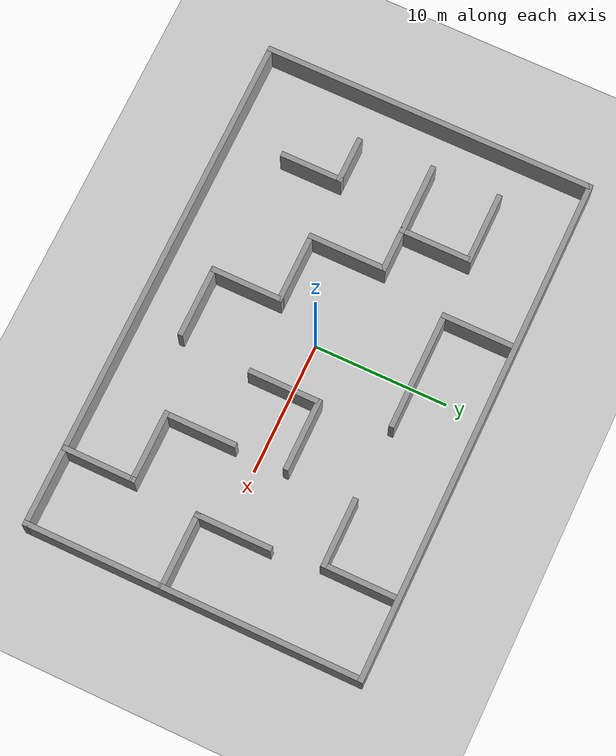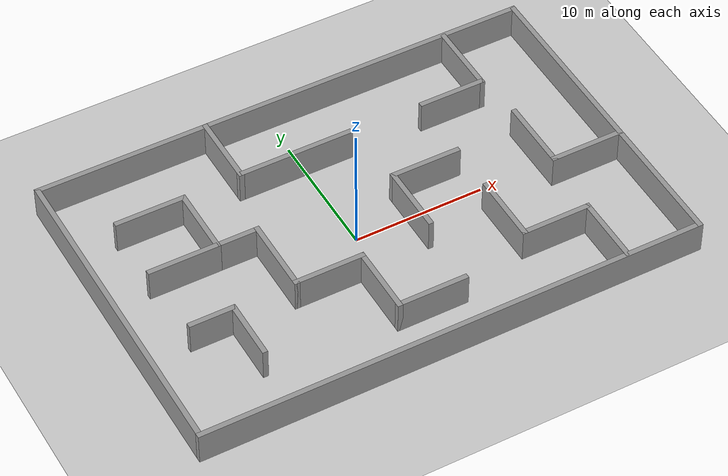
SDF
<sdf version="1.6">
 <world name="default">
  <light name="sun" type="directional">
   <pose>0 0 10 0 -0 0</pose>
   <diffuse>0.8 0.8 0.8 1</diffuse>
   <specular>0.2 0.2 0.2 1</specular>
   <attenuation>
    <range>1000</range>
    <constant>0.9</constant>
    <linear>0.01</linear>
    <quadratic>0.001</quadratic>
   </attenuation>
   <direction>-0.5 0.1 -0.9</direction>
  </light>
  <model name="ground_plane">
   <static>1</static>
   <link name="link">
    <collision name="collision">
     <geometry><plane><normal>0 0 1</normal><size>100 100</size></plane></geometry>
     <surface><friction><ode><mu>100</mu><mu2>50</mu2></ode></friction></surface>
    </collision>
    <visual name="visual">
     <cast_shadows>0</cast_shadows>
     <geometry><plane><normal>0 0 1</normal><size>100 100</size></plane></geometry>
     <material>
      <script><uri>file://media/materials/scripts/gazebo.material</uri><name>Gazebo/Grey</name></script>
     </material>
    </visual>
   </link>
  </model>
  <gravity>0 0 -9.8</gravity>
  <magnetic_field>6e-06 2.3e-05 -4.2e-05</magnetic_field>
  <atmosphere type="adiabatic"/>
  <physics name="default_physics" default="0" type="ode">
   <max_step_size>0.001</max_step_size>
   <real_time_factor>1</real_time_factor>
   <real_time_update_rate>1000</real_time_update_rate>
  </physics>
  <scene><ambient>0.4 0.4 0.4 1</ambient><background>0.7 0.7 0.7 1</background><shadows>1</shadows></scene>
  <spherical_coordinates>
   <surface_model>EARTH_WGS84</surface_model>
   <latitude_deg>0</latitude_deg>
   <longitude_deg>0</longitude_deg>
   <elevation>0</elevation>
   <heading_deg>0</heading_deg>
  </spherical_coordinates>
  <model name="Map4">
   <pose>1.026 0.348 0 0 -0 0</pose>
   <link name="Wall_28">
    <collision name="Wall_28_Collision">
     <geometry><box><size>38.7496 0.4 2.5</size></box></geometry>
     <pose>0 0 1.25 0 -0 0</pose>
    </collision>
    <visual name="Wall_28_Visual">
     <pose>0 0 1.25 0 -0 0</pose>
     <geometry><box><size>38.7496 0.4 2.5</size></box></geometry>
     <material>
      <script><uri>file://media/materials/scripts/gazebo.material</uri><name>Gazebo/Grey</name></script>
      <ambient>1 1 1 1</ambient>
     </material>
     <meta><layer>0</layer></meta>
    </visual>
    <pose>-1e-06 12.425 0 0 -0 0</pose>
   </link>
   <link name="Wall_29">
    <collision name="Wall_29_Collision">
     <geometry><box><size>25.25 0.4 2.5</size></box></geometry>
     <pose>0 0 1.25 0 -0 0</pose>
    </collision>
    <visual name="Wall_29_Visual">
     <pose>0 0 1.25 0 -0 0</pose>
     <geometry><box><size>25.25 0.4 2.5</size></box></geometry>
     <material>
      <script><uri>file://media/materials/scripts/gazebo.material</uri><name>Gazebo/Grey</name></script>
      <ambient>1 1 1 1</ambient>
     </material>
     <meta><layer>0</layer></meta>
    </visual>
    <pose>19.175 0 0 0 0 -1.5708</pose>
   </link>
   <link name="Wall_30">
    <collision name="Wall_30_Collision">
     <geometry><box><size>38.7504 0.4 2.5</size></box></geometry>
     <pose>0 0 1.25 0 -0 0</pose>
    </collision>
    <visual name="Wall_30_Visual">
     <pose>0 0 1.25 0 -0 0</pose>
     <geometry><box><size>38.7504 0.4 2.5</size></box></geometry>
     <material>
      <script><uri>file://media/materials/scripts/gazebo.material</uri><name>Gazebo/Grey</name></script>
      <ambient>1 1 1 1</ambient>
     </material>
     <meta><layer>0</layer></meta>
    </visual>
    <pose>-1e-06 -12.425 0 0 -0 3.14159</pose>
   </link>
   <link name="Wall_31">
    <collision name="Wall_31_Collision">
     <geometry><box><size>25.2496 0.4 2.5</size></box></geometry>
     <pose>0 0 1.25 0 -0 0</pose>
    </collision>
    <visual name="Wall_31_Visual">
     <pose>0 0 1.25 0 -0 0</pose>
     <geometry><box><size>25.2496 0.4 2.5</size></box></geometry>
     <material>
      <script><uri>file://media/materials/scripts/gazebo.material</uri><name>Gazebo/Grey</name></script>
      <ambient>1 1 1 1</ambient>
     </material>
     <meta><layer>0</layer></meta>
    </visual>
    <pose>-19.175 0 0 0 -0 1.5708</pose>
   </link>
   <link name="Wall_33">
    <collision name="Wall_33_Collision">
     <geometry><box><size>5.5 0.4 2.5</size></box></geometry>
     <pose>0 0 1.25 0 -0 0</pose>
    </collision>
    <visual name="Wall_33_Visual">
     <pose>0 0 1.25 0 -0 0</pose>
     <geometry><box><size>5.5 0.4 2.5</size></box></geometry>
     <material>
      <script><uri>file://media/materials/scripts/gazebo.material</uri><name>Gazebo/Grey</name></script>
      <ambient>1 1 1 1</ambient>
     </material>
     <meta><layer>0</layer></meta>
    </visual>
    <pose>-13.179 6.946 0 0 -0 0</pose>
   </link>
   <link name="Wall_34">
    <collision name="Wall_34_Collision">
     <geometry><box><size>5.5 0.4 2.5</size></box></geometry>
     <pose>0 0 1.25 0 -0 0</pose>
    </collision>
    <visual name="Wall_34_Visual">
     <pose>0 0 1.25 0 -0 0</pose>
     <geometry><box><size>5.5 0.4 2.5</size></box></geometry>
     <material>
      <script><uri>file://media/materials/scripts/gazebo.material</uri><name>Gazebo/Grey</name></script>
      <ambient>1 1 1 1</ambient>
     </material>
     <meta><layer>0</layer></meta>
    </visual>
    <pose>-10.629 4.396 0 0 0 -1.5708</pose>
   </link>
   <link name="Wall_35">
    <collision name="Wall_35_Collision">
     <geometry><box><size>5.49982 0.4 2.5</size></box></geometry>
     <pose>0 0 1.25 0 -0 0</pose>
    </collision>
    <visual name="Wall_35_Visual">
     <pose>0 0 1.25 0 -0 0</pose>
     <geometry><box><size>5.49982 0.4 2.5</size></box></geometry>
     <material>
      <script><uri>file://media/materials/scripts/gazebo.material</uri><name>Gazebo/Grey</name></script>
      <ambient>1 1 1 1</ambient>
     </material>
     <meta><layer>0</layer></meta>
    </visual>
    <pose>-13.179 1.846 0 0 -0 3.14159</pose>
   </link>
   <link name="Wall_37">
    <collision name="Wall_37_Collision">
     <geometry><box><size>3.5 0.4 2.5</size></box></geometry>
     <pose>0 0 1.25 0 -0 0</pose>
    </collision>
    <visual name="Wall_37_Visual">
     <pose>0 0 1.25 0 -0 0</pose>
     <geometry><box><size>3.5 0.4 2.5</size></box></geometry>
     <material>
      <script><uri>file://media/materials/scripts/gazebo.material</uri><name>Gazebo/Grey</name></script>
      <ambient>1 1 1 1</ambient>
     </material>
     <meta><layer>0</layer></meta>
    </visual>
    <pose>-9.079 1.846 0 0 -0 0</pose>
   </link>
   <link name="Wall_38">
    <collision name="Wall_38_Collision">
     <geometry><box><size>6 0.4 2.5</size></box></geometry>
     <pose>0 0 1.25 0 -0 0</pose>
    </collision>
    <visual name="Wall_38_Visual">
     <pose>0 0 1.25 0 -0 0</pose>
     <geometry><box><size>6 0.4 2.5</size></box></geometry>
     <material>
      <script><uri>file://media/materials/scripts/gazebo.material</uri><name>Gazebo/Grey</name></script>
      <ambient>1 1 1 1</ambient>
     </material>
     <meta><layer>0</layer></meta>
    </visual>
    <pose>-7.529 -0.954 0 0 0 -1.5708</pose>
   </link>
   <link name="Wall_39">
    <collision name="Wall_39_Collision">
     <geometry><box><size>5.5 0.4 2.5</size></box></geometry>
     <pose>0 0 1.25 0 -0 0</pose>
    </collision>
    <visual name="Wall_39_Visual">
     <pose>0 0 1.25 0 -0 0</pose>
     <geometry><box><size>5.5 0.4 2.5</size></box></geometry>
     <material>
      <script><uri>file://media/materials/scripts/gazebo.material</uri><name>Gazebo/Grey</name></script>
      <ambient>1 1 1 1</ambient>
     </material>
     <meta><layer>0</layer></meta>
    </visual>
    <pose>-4.979 -3.754 0 0 -0 0</pose>
   </link>
   <link name="Wall_40">
    <collision name="Wall_40_Collision">
     <geometry><box><size>5.5 0.4 2.5</size></box></geometry>
     <pose>0 0 1.25 0 -0 0</pose>
    </collision>
    <visual name="Wall_40_Visual">
     <pose>0 0 1.25 0 -0 0</pose>
     <geometry><box><size>5.5 0.4 2.5</size></box></geometry>
     <material>
      <script><uri>file://media/materials/scripts/gazebo.material</uri><name>Gazebo/Grey</name></script>
      <ambient>1 1 1 1</ambient>
     </material>
     <meta><layer>0</layer></meta>
    </visual>
    <pose>-2.429 -6.304 0 0 0 -1.5708</pose>
   </link>
   <link name="Wall_41">
    <collision name="Wall_41_Collision">
     <geometry><box><size>5.50018 0.4 2.5</size></box></geometry>
     <pose>0 0 1.25 0 -0 0</pose>
    </collision>
    <visual name="Wall_41_Visual">
     <pose>0 0 1.25 0 -0 0</pose>
     <geometry><box><size>5.50018 0.4 2.5</size></box></geometry>
     <material>
      <script><uri>file://media/materials/scripts/gazebo.material</uri><name>Gazebo/Grey</name></script>
      <ambient>1 1 1 1</ambient>
     </material>
     <meta><layer>0</layer></meta>
    </visual>
    <pose>0.120999 -8.854 0 0 -0 0</pose>
   </link>
   <link name="Wall_43">
    <collision name="Wall_43_Collision">
     <geometry><box><size>3.57036 0.4 2.5</size></box></geometry>
     <pose>0 0 1.25 0 -0 0</pose>
    </collision>
    <visual name="Wall_43_Visual">
     <pose>0 0 1.25 0 -0 0</pose>
     <geometry><box><size>3.57036 0.4 2.5</size></box></geometry>
     <material>
      <script><uri>file://media/materials/scripts/gazebo.material</uri><name>Gazebo/Grey</name></script>
      <ambient>1 1 1 1</ambient>
     </material>
     <meta><layer>0</layer></meta>
    </visual>
    <pose>-13.8608 -3.734 0 0 -0 0</pose>
   </link>
   <link name="Wall_44">
    <collision name="Wall_44_Collision">
     <geometry><box><size>4.7502 0.4 2.5</size></box></geometry>
     <pose>0 0 1.25 0 -0 0</pose>
    </collision>
    <visual name="Wall_44_Visual">
     <pose>0 0 1.25 0 -0 0</pose>
     <geometry><box><size>4.7502 0.4 2.5</size></box></geometry>
     <material>
      <script><uri>file://media/materials/scripts/gazebo.material</uri><name>Gazebo/Grey</name></script>
      <ambient>1 1 1 1</ambient>
     </material>
     <meta><layer>0</layer></meta>
    </visual>
    <pose>-12.2405 -5.909 0 0 0 -1.5708</pose>
   </link>
   <link name="Wall_46">
    <collision name="Wall_46_Collision">
     <geometry><box><size>5.49976 0.4 2.5</size></box></geometry>
     <pose>0 0 1.25 0 -0 0</pose>
    </collision>
    <visual name="Wall_46_Visual">
     <pose>0 0 1.25 0 -0 0</pose>
     <geometry><box><size>5.49976 0.4 2.5</size></box></geometry>
     <material>
      <script><uri>file://media/materials/scripts/gazebo.material</uri><name>Gazebo/Grey</name></script>
      <ambient>1 1 1 1</ambient>
     </material>
     <meta><layer>0</layer></meta>
    </visual>
    <pose>13.399 -9.801 0 0 -0 1.5708</pose>
   </link>
   <link name="Wall_47">
    <collision name="Wall_47_Collision">
     <geometry><box><size>5.49981 0.4 2.5</size></box></geometry>
     <pose>0 0 1.25 0 -0 0</pose>
    </collision>
    <visual name="Wall_47_Visual">
     <pose>0 0 1.25 0 -0 0</pose>
     <geometry><box><size>5.49981 0.4 2.5</size></box></geometry>
     <material>
      <script><uri>file://media/materials/scripts/gazebo.material</uri><name>Gazebo/Grey</name></script>
      <ambient>1 1 1 1</ambient>
     </material>
     <meta><layer>0</layer></meta>
    </visual>
    <pose>10.849 -7.251 0 0 -0 3.14159</pose>
   </link>
   <link name="Wall_48">
    <collision name="Wall_48_Collision">
     <geometry><box><size>5.49976 0.4 2.5</size></box></geometry>
     <pose>0 0 1.25 0 -0 0</pose>
    </collision>
    <visual name="Wall_48_Visual">
     <pose>0 0 1.25 0 -0 0</pose>
     <geometry><box><size>5.49976 0.4 2.5</size></box></geometry>
     <material>
      <script><uri>file://media/materials/scripts/gazebo.material</uri><name>Gazebo/Grey</name></script>
      <ambient>1 1 1 1</ambient>
     </material>
     <meta><layer>0</layer></meta>
    </visual>
    <pose>8.299 -4.701 0 0 -0 1.5708</pose>
   </link>
   <link name="Wall_50">
    <collision name="Wall_50_Collision">
     <geometry><box><size>5.49981 0.4 2.5</size></box></geometry>
     <pose>0 0 1.25 0 -0 0</pose>
    </collision>
    <visual name="Wall_50_Visual">
     <pose>0 0 1.25 0 -0 0</pose>
     <geometry><box><size>5.49981 0.4 2.5</size></box></geometry>
     <material>
      <script><uri>file://media/materials/scripts/gazebo.material</uri><name>Gazebo/Grey</name></script>
      <ambient>1 1 1 1</ambient>
     </material>
     <meta><layer>0</layer></meta>
    </visual>
    <pose>3.123 -0.739 0 0 -0 1.5708</pose>
   </link>
   <link name="Wall_51">
    <collision name="Wall_51_Collision">
     <geometry><box><size>5.50047 0.4 2.5</size></box></geometry>
     <pose>0 0 1.25 0 -0 0</pose>
    </collision>
    <visual name="Wall_51_Visual">
     <pose>0 0 1.25 0 -0 0</pose>
     <geometry><box><size>5.50047 0.4 2.5</size></box></geometry>
     <material>
      <script><uri>file://media/materials/scripts/gazebo.material</uri><name>Gazebo/Grey</name></script>
      <ambient>1 1 1 1</ambient>
     </material>
     <meta><layer>0</layer></meta>
    </visual>
    <pose>5.673 1.811 0 0 -0 0</pose>
   </link>
   <link name="Wall_53">
    <collision name="Wall_53_Collision">
     <geometry><box><size>5.74957 0.4 2.5</size></box></geometry>
     <pose>0 0 1.25 0 -0 0</pose>
    </collision>
    <visual name="Wall_53_Visual">
     <pose>0 0 1.25 0 -0 0</pose>
     <geometry><box><size>5.74957 0.4 2.5</size></box></geometry>
     <material>
      <script><uri>file://media/materials/scripts/gazebo.material</uri><name>Gazebo/Grey</name></script>
      <ambient>1 1 1 1</ambient>
     </material>
     <meta><layer>0</layer></meta>
    </visual>
    <pose>16.428 -2.237 0 0 -0 3.14159</pose>
   </link>
   <link name="Wall_54">
    <collision name="Wall_54_Collision">
     <geometry><box><size>5.74966 0.4 2.5</size></box></geometry>
     <pose>0 0 1.25 0 -0 0</pose>
    </collision>
    <visual name="Wall_54_Visual">
     <pose>0 0 1.25 0 -0 0</pose>
     <geometry><box><size>5.74966 0.4 2.5</size></box></geometry>
     <material>
      <script><uri>file://media/materials/scripts/gazebo.material</uri><name>Gazebo/Grey</name></script>
      <ambient>1 1 1 1</ambient>
     </material>
     <meta><layer>0</layer></meta>
    </visual>
    <pose>13.753 0.438 0 0 -0 1.5708</pose>
   </link>
   <link name="Wall_56">
    <collision name="Wall_56_Collision">
     <geometry><box><size>5.75042 0.4 2.5</size></box></geometry>
     <pose>0 0 1.25 0 -0 0</pose>
    </collision>
    <visual name="Wall_56_Visual">
     <pose>0 0 1.25 0 -0 0</pose>
     <geometry><box><size>5.75042 0.4 2.5</size></box></geometry>
     <material>
      <script><uri>file://media/materials/scripts/gazebo.material</uri><name>Gazebo/Grey</name></script>
      <ambient>1 1 1 1</ambient>
     </material>
     <meta><layer>0</layer></meta>
    </visual>
    <pose>-6.141 9.733 0 0 0 -1.5708</pose>
   </link>
   <link name="Wall_57">
    <collision name="Wall_57_Collision">
     <geometry><box><size>9.00015 0.4 2.5</size></box></geometry>
     <pose>0 0 1.25 0 -0 0</pose>
    </collision>
    <visual name="Wall_57_Visual">
     <pose>0 0 1.25 0 -0 0</pose>
     <geometry><box><size>9.00015 0.4 2.5</size></box></geometry>
     <material>
      <script><uri>file://media/materials/scripts/gazebo.material</uri><name>Gazebo/Grey</name></script>
      <ambient>1 1 1 1</ambient>
     </material>
     <meta><layer>0</layer></meta>
    </visual>
    <pose>-1.841 7.058 0 0 -0 0</pose>
   </link>
   <link name="Wall_59">
    <collision name="Wall_59_Collision">
     <geometry><box><size>5.2497 0.4 2.5</size></box></geometry>
     <pose>0 0 1.25 0 -0 0</pose>
    </collision>
    <visual name="Wall_59_Visual">
     <pose>0 0 1.25 0 -0 0</pose>
     <geometry><box><size>5.2497 0.4 2.5</size></box></geometry>
     <material>
      <script><uri>file://media/materials/scripts/gazebo.material</uri><name>Gazebo/Grey</name></script>
      <ambient>1 1 1 1</ambient>
     </material>
     <meta><layer>0</layer></meta>
    </visual>
    <pose>10.808 6.946 0 0 -0 0</pose>
   </link>
   <link name="Wall_62">
    <collision name="Wall_62_Collision">
     <geometry><box><size>5.75007 0.4 2.5</size></box></geometry>
     <pose>0 0 1.25 0 -0 0</pose>
    </collision>
    <visual name="Wall_62_Visual">
     <pose>0 0 1.25 0 -0 0</pose>
     <geometry><box><size>5.75007 0.4 2.5</size></box></geometry>
     <material>
      <script><uri>file://media/materials/scripts/gazebo.material</uri><name>Gazebo/Grey</name></script>
      <ambient>1 1 1 1</ambient>
     </material>
     <meta><layer>0</layer></meta>
    </visual>
    <pose>13.233 9.621 0 0 -0 1.5708</pose>
   </link>
   <static>1</static>
  </model>
 </world>
</sdf>
